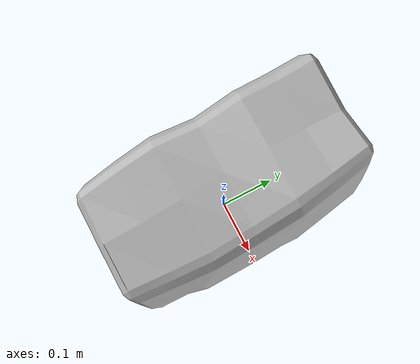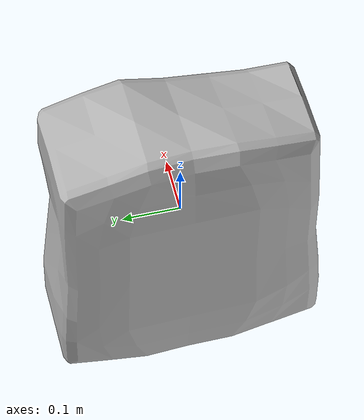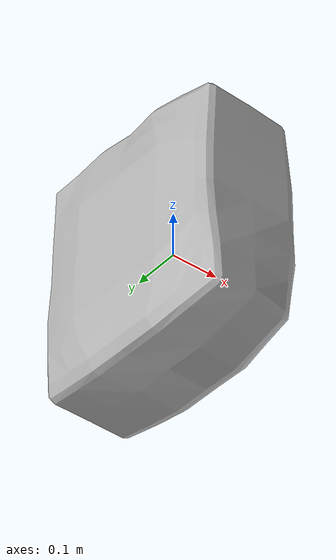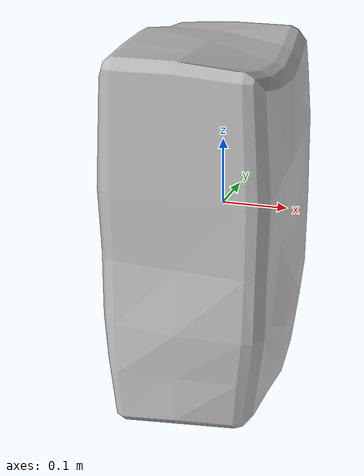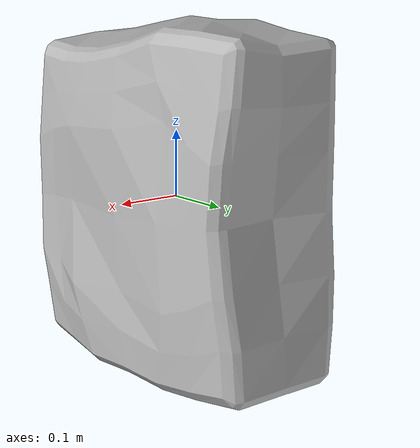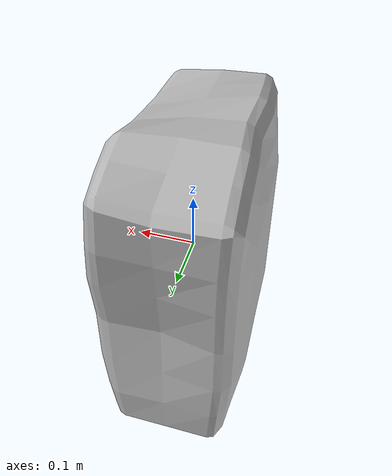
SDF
<?xml version="1.0" ?>
<sdf version='1.5'>
  <model name='ctb_model'>
    <static>true</static>
    <link name='ctb_link'>
      <pose>0 0 0 0 0 0</pose>
      <inertial>
        <pose>0 0 0 0 0 0</pose>
        <mass>1</mass>
        <inertia>
          <ixx>1</ixx>
          <ixy>0</ixy>
          <ixz>0</ixz>
          <iyy>1</iyy>
          <iyz>0</iyz>
          <izz>1</izz>
        </inertia>
      </inertial>
      <collision name='ctb_collision'>
        <pose>0 0 0 0 0 0</pose>
        <geometry>
          <mesh>
            <scale>1 1 1</scale>
            <uri>model://CTB//meshes//CTB.dae</uri>
          </mesh>
        </geometry>
        <surface>
          <contact>
            <ode/>
          </contact>
          <friction>
            <ode/>
          </friction>
        </surface>
      </collision>
      <visual name='ctb_visual'>
        <pose>0 0 0 0 0 0</pose>
        <geometry>
          <mesh>
            <scale>1 1 1</scale>
            <uri>model://CTB//meshes//CTB.dae</uri>
          </mesh>
        </geometry>
      </visual>
    </link>
  </model>
</sdf>
